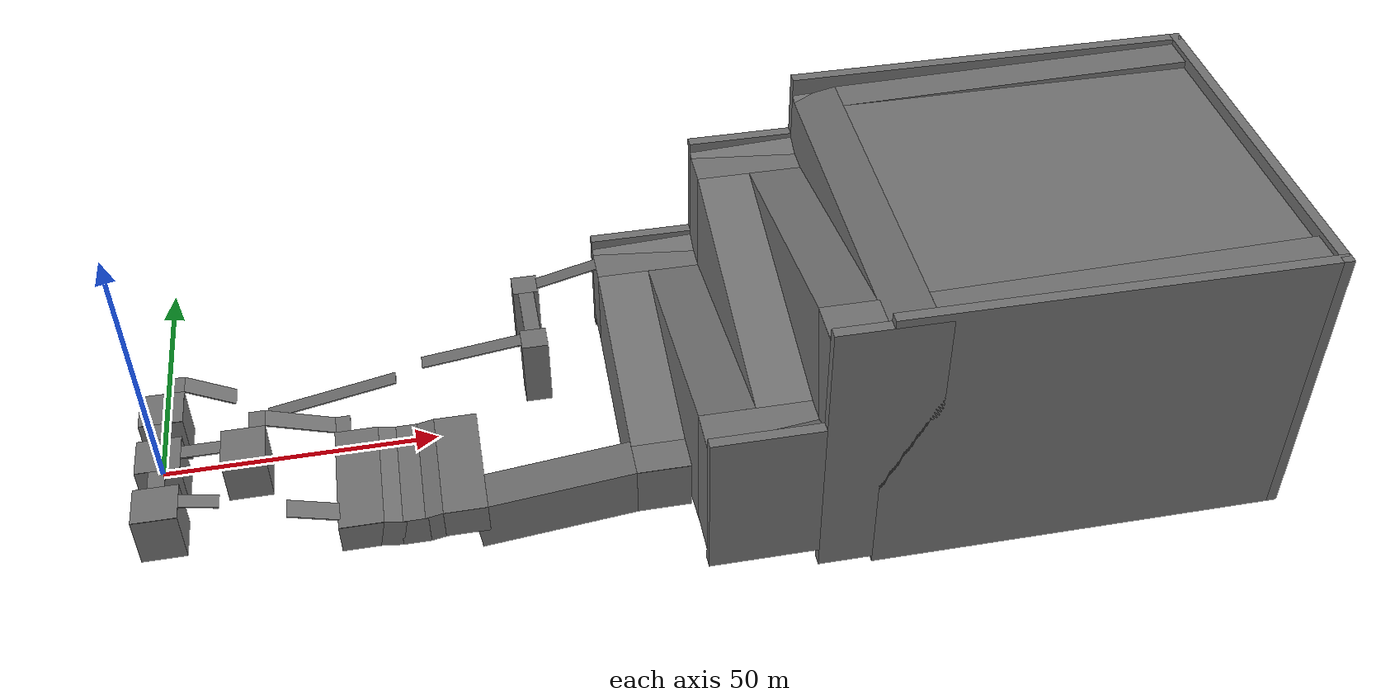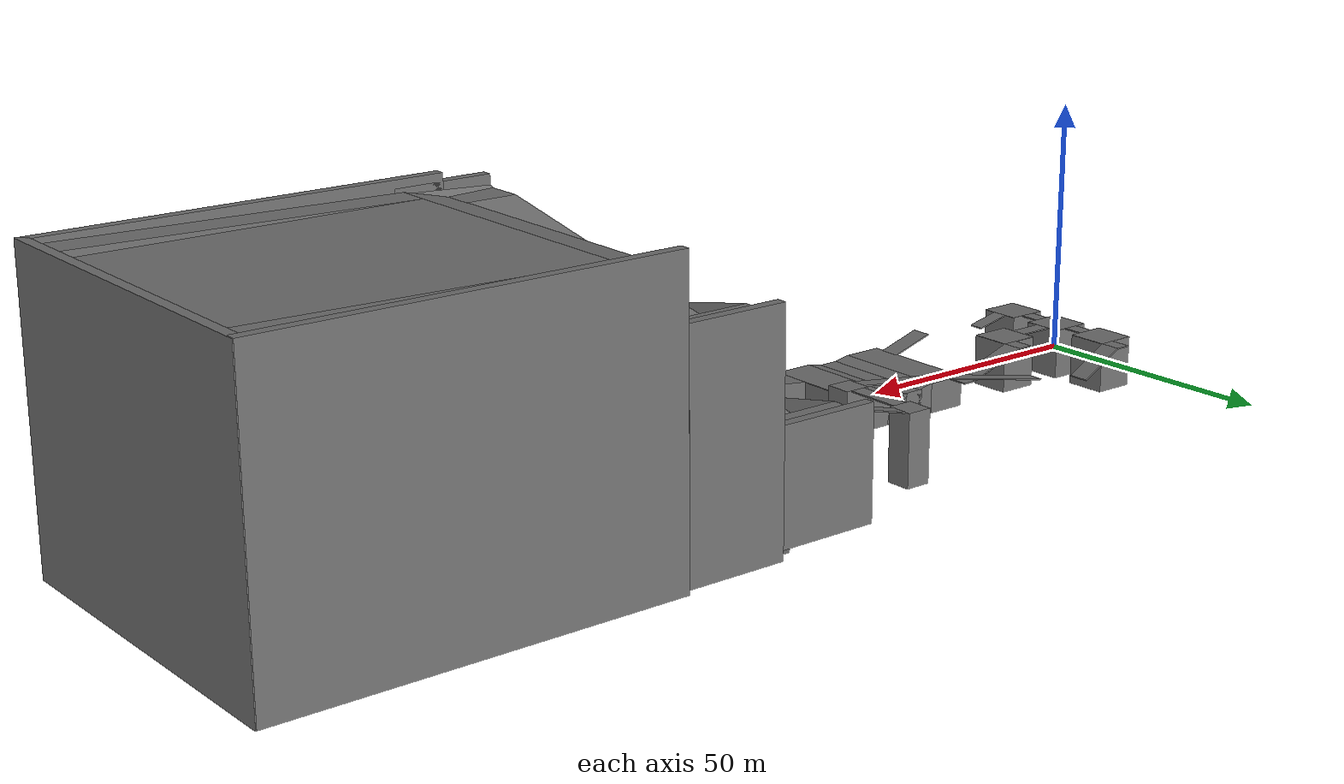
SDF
<sdf version="1.10">
 <world name="waterworld">
  <physics name="ode_cpu" type="ode">
   <max_step_size>0.002</max_step_size>
   <real_time_update_rate>500</real_time_update_rate>
   <real_time_factor>1.0</real_time_factor>
   <ode>
    <solver><type>quick</type><iters>50</iters><sor>1.3</sor></solver>
    <constraints><cfm>0.0</cfm><erp>0.2</erp></constraints>
   </ode>
  </physics>
  <plugin name="gz::sim::systems::Physics" filename="gz-sim-physics-system"/>
  <plugin name="gz::sim::systems::UserCommands" filename="gz-sim-user-commands-system"/>
  <plugin name="gz::sim::systems::SceneBroadcaster" filename="gz-sim-scene-broadcaster-system"/>
  <plugin name="gz::sim::systems::Contact" filename="gz-sim-contact-system"/>
  <gravity>0 0 -9.81</gravity>
  <magnetic_field>5.5644999999999998e-06 2.2875799999999999e-05 -4.2388400000000002e-05</magnetic_field>
  <atmosphere type="adiabatic"/>
  <scene><ambient>0.5 0.5 0.5 1</ambient><background>0.7 0.7 0.75 1</background><shadows>false</shadows></scene>
  <model name="central_tower">
   <static>true</static>
   <link name="link">
    <collision name="col"><geometry><box><size>8 8 10</size></box></geometry></collision>
    <visual name="vis">
     <geometry><box><size>8 8 10</size></box></geometry>
     <material>
      <ambient>0.35 0.35 0.35 1</ambient>
      <diffuse>0.45 0.45 0.45 1</diffuse>
      <pbr>
       <metal>
        <albedo_map>model://textures/stone_textures/stone_wall_seamless_1x1.jpg</albedo_map>
        <roughness>0.9</roughness>
        <metalness>0.0</metalness>
       </metal>
      </pbr>
     </material>
    </visual>
   </link>
  </model>
  <model name="central_arena_floor_model">
   <static>true</static>
   <pose>0 0 5 0 0 0</pose>
   <link name="central_arena_floor_link">
    <collision name="col">
     <geometry><box><size>8 8 0.1</size></box></geometry>
     <surface>
      <friction><ode><mu>0.9</mu><mu2>0.9</mu2><fdir1>1 0 0</fdir1></ode></friction>
      <bounce><restitution_coefficient>0.03</restitution_coefficient><threshold>1e3</threshold></bounce>
      <contact><ode><kp>1e6</kp><kd>1e3</kd><max_vel>1.0</max_vel><min_depth>0.001</min_depth></ode></contact>
     </surface>
    </collision>
    <visual name="vis">
     <geometry><box><size>8 8 0.1</size></box></geometry>
     <material>
      <ambient>0.35 0.35 0.35 1</ambient>
      <diffuse>0.45 0.45 0.45 1</diffuse>
      <pbr>
       <metal>
        <albedo_map>model://textures/grass_textures/green_grass_seamless.jpg</albedo_map>
        <roughness>0.9</roughness>
        <metalness>0.0</metalness>
       </metal>
      </pbr>
     </material>
    </visual>
   </link>
  </model>
  <model name="west_tower">
   <static>true</static>
   <link name="link">
    <pose>0 12 0 0 0 0</pose>
    <collision name="col"><geometry><box><size>8 8 10</size></box></geometry></collision>
    <visual name="vis">
     <geometry><box><size>8 8 10</size></box></geometry>
     <material>
      <ambient>0.35 0.35 0.35 1</ambient>
      <diffuse>0.45 0.45 0.45 1</diffuse>
      <pbr>
       <metal>
        <albedo_map>model://textures/stone_textures/stone_wall_seamless_1x1.jpg</albedo_map>
        <roughness>0.9</roughness>
        <metalness>0.0</metalness>
       </metal>
      </pbr>
     </material>
    </visual>
   </link>
  </model>
  <model name="west_arena_floor_model">
   <static>true</static>
   <pose>0 12 5 0 0 0</pose>
   <link name="west_arena_floor_link">
    <collision name="col">
     <geometry><box><size>8 8 0.1</size></box></geometry>
     <surface>
      <friction><ode><mu>0.9</mu><mu2>0.9</mu2><fdir1>1 0 0</fdir1></ode></friction>
      <bounce><restitution_coefficient>0.03</restitution_coefficient><threshold>1e3</threshold></bounce>
      <contact><ode><kp>1e6</kp><kd>1e3</kd><max_vel>1.0</max_vel><min_depth>0.001</min_depth></ode></contact>
     </surface>
    </collision>
    <visual name="vis">
     <geometry><box><size>8 8 0.1</size></box></geometry>
     <material>
      <ambient>0.35 0.35 0.35 1</ambient>
      <diffuse>0.45 0.45 0.45 1</diffuse>
      <pbr>
       <metal>
        <albedo_map>model://textures/grass_textures/green_grass_seamless.jpg</albedo_map>
        <roughness>0.9</roughness>
        <metalness>0.0</metalness>
       </metal>
      </pbr>
     </material>
    </visual>
   </link>
  </model>
  <model name="east_tower">
   <static>true</static>
   <link name="link">
    <pose>0 -12 0 0 0 0</pose>
    <collision name="col"><geometry><box><size>8 8 10</size></box></geometry></collision>
    <visual name="vis">
     <geometry><box><size>8 8 10</size></box></geometry>
     <material>
      <ambient>0.35 0.35 0.35 1</ambient>
      <diffuse>0.45 0.45 0.45 1</diffuse>
      <pbr>
       <metal>
        <albedo_map>model://textures/stone_textures/stone_wall_seamless_1x1.jpg</albedo_map>
        <roughness>0.9</roughness>
        <metalness>0.0</metalness>
       </metal>
      </pbr>
     </material>
    </visual>
   </link>
  </model>
  <model name="east_arena_floor_model">
   <static>true</static>
   <pose>0 -12 5 0 0 0</pose>
   <link name="east_arena_floor_link">
    <collision name="col">
     <geometry><box><size>8 8 0.1</size></box></geometry>
     <surface>
      <friction><ode><mu>0.9</mu><mu2>0.9</mu2><fdir1>1 0 0</fdir1></ode></friction>
      <bounce><restitution_coefficient>0.03</restitution_coefficient><threshold>1e3</threshold></bounce>
      <contact><ode><kp>1e6</kp><kd>1e3</kd><max_vel>1.0</max_vel><min_depth>0.001</min_depth></ode></contact>
     </surface>
    </collision>
    <visual name="vis">
     <geometry><box><size>8 8 0.1</size></box></geometry>
     <material>
      <ambient>0.35 0.35 0.35 1</ambient>
      <diffuse>0.45 0.45 0.45 1</diffuse>
      <pbr>
       <metal>
        <albedo_map>model://textures/grass_textures/green_grass_seamless.jpg</albedo_map>
        <roughness>0.9</roughness>
        <metalness>0.0</metalness>
       </metal>
      </pbr>
     </material>
    </visual>
   </link>
  </model>
  <model name="north_tower">
   <static>true</static>
   <link name="link">
    <pose>15 0 0 0 0 0</pose>
    <collision name="col"><geometry><box><size>8 8 10</size></box></geometry></collision>
    <visual name="vis">
     <geometry><box><size>8 8 10</size></box></geometry>
     <material>
      <ambient>0.35 0.35 0.35 1</ambient>
      <diffuse>0.45 0.45 0.45 1</diffuse>
      <pbr>
       <metal>
        <albedo_map>model://textures/stone_textures/stone_wall_seamless_1x1.jpg</albedo_map>
        <roughness>0.9</roughness>
        <metalness>0.0</metalness>
       </metal>
      </pbr>
     </material>
    </visual>
   </link>
  </model>
  <model name="north_arena_floor_model">
   <static>true</static>
   <pose>15 0 5 0 0 0</pose>
   <link name="north_arena_floor_link">
    <collision name="col">
     <geometry><box><size>8 8 0.1</size></box></geometry>
     <surface>
      <friction><ode><mu>0.9</mu><mu2>0.9</mu2><fdir1>1 0 0</fdir1></ode></friction>
      <bounce><restitution_coefficient>0.03</restitution_coefficient><threshold>1e3</threshold></bounce>
      <contact><ode><kp>1e6</kp><kd>1e3</kd><max_vel>1.0</max_vel><min_depth>0.001</min_depth></ode></contact>
     </surface>
    </collision>
    <visual name="vis">
     <geometry><box><size>8 8 0.1</size></box></geometry>
     <material>
      <ambient>0.35 0.35 0.35 1</ambient>
      <diffuse>0.45 0.45 0.45 1</diffuse>
      <pbr>
       <metal>
        <albedo_map>model://textures/grass_textures/green_grass_seamless.jpg</albedo_map>
        <roughness>0.9</roughness>
        <metalness>0.0</metalness>
       </metal>
      </pbr>
     </material>
    </visual>
   </link>
  </model>
  <model name="tidal_island_segment_1">
   <static>true</static>
   <link name="link">
    <pose>35 -8 -2.2 0 0 0</pose>
    <collision name="col"><geometry><box><size>8 24 6</size></box></geometry></collision>
    <visual name="vis">
     <geometry><box><size>8 24 6</size></box></geometry>
     <material>
      <ambient>0.35 0.35 0.35 1</ambient>
      <diffuse>0.45 0.45 0.45 1</diffuse>
      <pbr>
       <metal>
        <albedo_map>model://textures/stone_textures/stone_wall_seamless_1x1.jpg</albedo_map>
        <roughness>0.9</roughness>
        <metalness>0.0</metalness>
       </metal>
      </pbr>
     </material>
    </visual>
   </link>
  </model>
  <model name="tidal_island_segment_1_floor_model">
   <static>true</static>
   <pose>35 -8 0.8 0 0 0</pose>
   <link name="north_arena_floor_link">
    <collision name="col">
     <geometry><box><size>8 24 0.1</size></box></geometry>
     <surface>
      <friction><ode><mu>0.9</mu><mu2>0.9</mu2><fdir1>1 0 0</fdir1></ode></friction>
      <bounce><restitution_coefficient>0.03</restitution_coefficient><threshold>1e3</threshold></bounce>
      <contact><ode><kp>1e6</kp><kd>1e3</kd><max_vel>1.0</max_vel><min_depth>0.001</min_depth></ode></contact>
     </surface>
    </collision>
    <visual name="vis">
     <geometry><box><size>8 24 0.1</size></box></geometry>
     <material>
      <ambient>0.35 0.35 0.35 1</ambient>
      <diffuse>0.45 0.45 0.45 1</diffuse>
      <pbr>
       <metal>
        <albedo_map>model://textures/grass_textures/green_grass_seamless.jpg</albedo_map>
        <roughness>0.9</roughness>
        <metalness>0.0</metalness>
       </metal>
      </pbr>
     </material>
    </visual>
   </link>
  </model>
  <model name="tidal_island_segment_2">
   <static>true</static>
   <link name="link">
    <pose>40.3641 -8 -2.4876 0 0.2 0</pose>
    <collision name="col"><geometry><box><size>4 24 6</size></box></geometry></collision>
    <visual name="vis">
     <geometry><box><size>4 24 6</size></box></geometry>
     <material>
      <ambient>0.35 0.35 0.35 1</ambient>
      <diffuse>0.45 0.45 0.45 1</diffuse>
      <pbr>
       <metal>
        <albedo_map>model://textures/stone_textures/stone_wall_seamless_1x1.jpg</albedo_map>
        <roughness>0.9</roughness>
        <metalness>0.0</metalness>
       </metal>
      </pbr>
     </material>
    </visual>
   </link>
  </model>
  <model name="tidal_island_segment_3">
   <static>true</static>
   <link name="link">
    <pose>44.2 -8 -2.8 0 0 0</pose>
    <collision name="col"><geometry><box><size>5 24 6</size></box></geometry></collision>
    <visual name="vis">
     <geometry><box><size>5 24 6</size></box></geometry>
     <material>
      <ambient>0.35 0.35 0.35 1</ambient>
      <diffuse>0.45 0.45 0.45 1</diffuse>
      <pbr>
       <metal>
        <albedo_map>model://textures/stone_textures/stone_wall_seamless_1x1.jpg</albedo_map>
        <roughness>0.9</roughness>
        <metalness>0.0</metalness>
       </metal>
      </pbr>
     </material>
    </visual>
   </link>
  </model>
  <model name="tidal_island_segment_4">
   <static>true</static>
   <link name="link">
    <pose>48 -8 -2.4876 0 -0.2 0</pose>
    <collision name="col"><geometry><box><size>4 24 6</size></box></geometry></collision>
    <visual name="vis">
     <geometry><box><size>4 24 6</size></box></geometry>
     <material>
      <ambient>0.35 0.35 0.35 1</ambient>
      <diffuse>0.45 0.45 0.45 1</diffuse>
      <pbr>
       <metal>
        <albedo_map>model://textures/stone_textures/stone_wall_seamless_1x1.jpg</albedo_map>
        <roughness>0.9</roughness>
        <metalness>0.0</metalness>
       </metal>
      </pbr>
     </material>
    </visual>
   </link>
  </model>
  <model name="tidal_island_segment_5">
   <static>true</static>
   <link name="link">
    <pose>53.3641 -8 -2.2 0 0 0</pose>
    <collision name="col"><geometry><box><size>8 24 6</size></box></geometry></collision>
    <visual name="vis">
     <geometry><box><size>8 24 6</size></box></geometry>
     <material>
      <ambient>0.35 0.35 0.35 1</ambient>
      <diffuse>0.45 0.45 0.45 1</diffuse>
      <pbr>
       <metal>
        <albedo_map>model://textures/stone_textures/stone_wall_seamless_1x1.jpg</albedo_map>
        <roughness>0.9</roughness>
        <metalness>0.0</metalness>
       </metal>
      </pbr>
     </material>
    </visual>
   </link>
  </model>
  <model name="tidal_island_segment_5_floor_model">
   <static>true</static>
   <pose>53.3641 -8 0.7999 0 0 0</pose>
   <link name="north_arena_floor_link">
    <collision name="col">
     <geometry><box><size>8 24 0.1</size></box></geometry>
     <surface>
      <friction><ode><mu>0.9</mu><mu2>0.9</mu2><fdir1>1 0 0</fdir1></ode></friction>
      <bounce><restitution_coefficient>0.03</restitution_coefficient><threshold>1e3</threshold></bounce>
      <contact><ode><kp>1e6</kp><kd>1e3</kd><max_vel>1.0</max_vel><min_depth>0.001</min_depth></ode></contact>
     </surface>
    </collision>
    <visual name="vis">
     <geometry><box><size>8 24 0.1</size></box></geometry>
     <material>
      <ambient>0.35 0.35 0.35 1</ambient>
      <diffuse>0.45 0.45 0.45 1</diffuse>
      <pbr>
       <metal>
        <albedo_map>model://textures/grass_textures/green_grass_seamless.jpg</albedo_map>
        <roughness>0.9</roughness>
        <metalness>0.0</metalness>
       </metal>
      </pbr>
     </material>
    </visual>
   </link>
  </model>
  <model name="north_bridge">
   <static>true</static>
   <link name="link">
    <pose>7.5 0 4.925 0 0 0</pose>
    <collision name="col"><geometry><box><size>7 3 0.25</size></box></geometry></collision>
    <visual name="vis">
     <geometry><box><size>7 3 0.25</size></box></geometry>
     <material>
      <ambient>0.35 0.35 0.35 1</ambient>
      <diffuse>0.45 0.45 0.45 1</diffuse>
      <pbr>
       <metal>
        <albedo_map>model://textures/wood_textures/wood_texture_seamless_1x2.jpg</albedo_map>
        <roughness>0.9</roughness>
        <metalness>0.0</metalness>
       </metal>
      </pbr>
     </material>
    </visual>
   </link>
  </model>
  <model name="east_bridge">
   <static>true</static>
   <link name="link">
    <pose>0 -6 4.925 0 0 0</pose>
    <collision name="col"><geometry><box><size>3 4 0.25</size></box></geometry></collision>
    <visual name="vis">
     <geometry><box><size>3 4 0.25</size></box></geometry>
     <material>
      <ambient>0.35 0.35 0.35 1</ambient>
      <diffuse>0.45 0.45 0.45 1</diffuse>
      <pbr>
       <metal>
        <albedo_map>model://textures/wood_textures/wood_texture_seamless_1x1.jpg</albedo_map>
        <roughness>0.9</roughness>
        <metalness>0.0</metalness>
       </metal>
      </pbr>
     </material>
    </visual>
   </link>
  </model>
  <model name="west_bridge">
   <static>true</static>
   <link name="link">
    <pose>0 6 4.925 0 0 0</pose>
    <collision name="col"><geometry><box><size>3 4 0.25</size></box></geometry></collision>
    <visual name="vis">
     <geometry><box><size>3 4 0.25</size></box></geometry>
     <material>
      <ambient>0.35 0.35 0.35 1</ambient>
      <diffuse>0.45 0.45 0.45 1</diffuse>
      <pbr>
       <metal>
        <albedo_map>model://textures/wood_textures/wood_texture_seamless_1x1.jpg</albedo_map>
        <roughness>0.9</roughness>
        <metalness>0.0</metalness>
       </metal>
      </pbr>
     </material>
    </visual>
   </link>
  </model>
  <model name="east_north_bridge">
   <static>true</static>
   <link name="link">
    <pose>7.39 -12 4.165 0 0.22 0</pose>
    <collision name="col"><geometry><box><size>7 3 0.25</size></box></geometry></collision>
    <visual name="vis">
     <geometry><box><size>7 3 0.25</size></box></geometry>
     <material>
      <ambient>0.35 0.35 0.35 1</ambient>
      <diffuse>0.45 0.45 0.45 1</diffuse>
      <pbr>
       <metal>
        <albedo_map>model://textures/wood_textures/wood_texture_seamless_1x2.jpg</albedo_map>
        <roughness>0.9</roughness>
        <metalness>0.0</metalness>
       </metal>
      </pbr>
     </material>
    </visual>
   </link>
  </model>
  <model name="west_north_bridge_platform">
   <static>true</static>
   <link name="link">
    <pose>2.5 18 4.925 0 0 0</pose>
    <collision name="col"><geometry><box><size>3 4 0.25</size></box></geometry></collision>
    <visual name="vis">
     <geometry><box><size>3 4 0.25</size></box></geometry>
     <material>
      <ambient>0.35 0.35 0.35 1</ambient>
      <diffuse>0.45 0.45 0.45 1</diffuse>
      <pbr>
       <metal>
        <albedo_map>model://textures/wood_textures/wood_texture_seamless_1x1.jpg</albedo_map>
        <roughness>0.9</roughness>
        <metalness>0.0</metalness>
       </metal>
      </pbr>
     </material>
    </visual>
   </link>
  </model>
  <model name="west_north_bridge">
   <static>true</static>
   <link name="link">
    <pose>8.328 18 2.543 0 0.5 0</pose>
    <collision name="col"><geometry><box><size>10 4 0.25</size></box></geometry></collision>
    <visual name="vis">
     <geometry><box><size>10 4 0.25</size></box></geometry>
     <material>
      <ambient>0.35 0.35 0.35 1</ambient>
      <diffuse>0.45 0.45 0.45 1</diffuse>
      <pbr>
       <metal>
        <albedo_map>model://textures/wood_textures/wood_texture_seamless_1x3.jpg</albedo_map>
        <roughness>0.9</roughness>
        <metalness>0.0</metalness>
       </metal>
      </pbr>
     </material>
    </visual>
   </link>
  </model>
  <model name="west_north_north_bridge">
   <static>true</static>
   <link name="link">
    <pose>31 12.2 2.5 0 -0.2 0</pose>
    <collision name="col"><geometry><box><size>25 3 0.25</size></box></geometry></collision>
    <visual name="vis">
     <geometry><box><size>25 3 0.25</size></box></geometry>
     <material>
      <ambient>0.35 0.35 0.35 1</ambient>
      <diffuse>0.45 0.45 0.45 1</diffuse>
      <pbr>
       <metal>
        <albedo_map>model://textures/wood_textures/wood_texture_seamless_1x10.jpg</albedo_map>
        <roughness>0.9</roughness>
        <metalness>0.0</metalness>
       </metal>
      </pbr>
     </material>
    </visual>
   </link>
  </model>
  <model name="north_north_bridge_platform_1">
   <static>true</static>
   <link name="link">
    <pose>17.5 6 4.925 0 0 0</pose>
    <collision name="col"><geometry><box><size>3 4 0.25</size></box></geometry></collision>
    <visual name="vis">
     <geometry><box><size>3 4 0.25</size></box></geometry>
     <material>
      <ambient>0.35 0.35 0.35 1</ambient>
      <diffuse>0.45 0.45 0.45 1</diffuse>
      <pbr>
       <metal>
        <albedo_map>model://textures/wood_textures/wood_texture_seamless_1x3.jpg</albedo_map>
        <roughness>0.9</roughness>
        <metalness>0.0</metalness>
       </metal>
      </pbr>
     </material>
    </visual>
   </link>
  </model>
  <model name="north_north_bridge">
   <static>true</static>
   <link name="link">
    <pose>25.1 6 2.82 0 0.33 0</pose>
    <collision name="col"><geometry><box><size>13 4 0.25</size></box></geometry></collision>
    <visual name="vis">
     <geometry><box><size>13 4 0.25</size></box></geometry>
     <material>
      <ambient>0.35 0.35 0.35 1</ambient>
      <diffuse>0.45 0.45 0.45 1</diffuse>
      <pbr>
       <metal>
        <albedo_map>model://textures/wood_textures/wood_texture_seamless_1x3.jpg</albedo_map>
        <roughness>0.9</roughness>
        <metalness>0.0</metalness>
       </metal>
      </pbr>
     </material>
    </visual>
   </link>
  </model>
  <model name="north_north_bridge_platform_2">
   <static>true</static>
   <link name="link">
    <pose>32.5 6 0.725 0 0 0</pose>
    <collision name="col"><geometry><box><size>3 4 0.25</size></box></geometry></collision>
    <visual name="vis">
     <geometry><box><size>3 4 0.25</size></box></geometry>
     <material>
      <ambient>0.35 0.35 0.35 1</ambient>
      <diffuse>0.45 0.45 0.45 1</diffuse>
      <pbr>
       <metal>
        <albedo_map>model://textures/wood_textures/wood_texture_seamless_1x1.jpg</albedo_map>
        <roughness>0.9</roughness>
        <metalness>0.0</metalness>
       </metal>
      </pbr>
     </material>
    </visual>
   </link>
  </model>
  <model name="east_north_north_bridge">
   <static>true</static>
   <link name="link">
    <pose>27.26 -16 1.986 0 0.3 0</pose>
    <collision name="col"><geometry><box><size>10 4 0.25</size></box></geometry></collision>
    <visual name="vis">
     <geometry><box><size>10 4 0.25</size></box></geometry>
     <material>
      <ambient>0.35 0.35 0.35 1</ambient>
      <diffuse>0.45 0.45 0.45 1</diffuse>
      <pbr>
       <metal>
        <albedo_map>model://textures/wood_textures/wood_texture_seamless_1x5.jpg</albedo_map>
        <roughness>0.9</roughness>
        <metalness>0.0</metalness>
       </metal>
      </pbr>
     </material>
    </visual>
   </link>
  </model>
  <model name="stone_bridge_1">
   <static>true</static>
   <link name="link">
    <pose>70 -15.999 -2.66 0 -0.12 0</pose>
    <collision name="col"><geometry><box><size>30 8 10</size></box></geometry></collision>
    <visual name="vis">
     <geometry><box><size>30 8 10</size></box></geometry>
     <material>
      <ambient>0.35 0.35 0.35 1</ambient>
      <diffuse>0.45 0.45 0.45 1</diffuse>
      <pbr>
       <metal>
        <albedo_map>model://textures/stone_textures/stone_wall_seamless_1x1.jpg</albedo_map>
        <roughness>0.9</roughness>
        <metalness>0.0</metalness>
       </metal>
      </pbr>
     </material>
    </visual>
   </link>
  </model>
  <model name="east_north_north_north_bridge_1">
   <static>true</static>
   <link name="link">
    <pose>57.978 14 7.6 0 -0.133 0</pose>
    <collision name="col"><geometry><box><size>19.25 3 0.25</size></box></geometry></collision>
    <visual name="vis">
     <geometry><box><size>19.25 3 0.25</size></box></geometry>
     <material>
      <ambient>0.35 0.35 0.35 1</ambient>
      <diffuse>0.45 0.45 0.45 1</diffuse>
      <pbr>
       <metal>
        <albedo_map>model://textures/wood_textures/wood_texture_seamless_1x5.jpg</albedo_map>
        <roughness>0.9</roughness>
        <metalness>0.0</metalness>
       </metal>
      </pbr>
     </material>
    </visual>
   </link>
  </model>
  <model name="east_north_north_north_bridge_platform_1">
   <static>true</static>
   <link name="link">
    <pose>70 14 2 0 0 0</pose>
    <collision name="col"><geometry><box><size>5 5 14</size></box></geometry></collision>
    <visual name="vis">
     <geometry><box><size>5 5 14</size></box></geometry>
     <material>
      <ambient>0.35 0.35 0.35 1</ambient>
      <diffuse>0.45 0.45 0.45 1</diffuse>
      <pbr>
       <metal>
        <albedo_map>model://textures/stone_textures/stone_wall_seamless_1x1.jpg</albedo_map>
        <roughness>0.9</roughness>
        <metalness>0.0</metalness>
       </metal>
      </pbr>
     </material>
    </visual>
   </link>
  </model>
  <model name="east_north_north_north_bridge_2">
   <static>true</static>
   <link name="link">
    <pose>70 22 8.875 0 0 0</pose>
    <collision name="col"><geometry><box><size>3 11 0.25</size></box></geometry></collision>
    <visual name="vis">
     <geometry><box><size>3 11 0.25</size></box></geometry>
     <material>
      <ambient>0.35 0.35 0.35 1</ambient>
      <diffuse>0.45 0.45 0.45 1</diffuse>
      <pbr>
       <metal>
        <albedo_map>model://textures/wood_textures/wood_texture_seamless_1x1.jpg</albedo_map>
        <roughness>0.9</roughness>
        <metalness>0.0</metalness>
       </metal>
      </pbr>
     </material>
    </visual>
   </link>
  </model>
  <model name="east_north_north_north_bridge_platform_2">
   <static>true</static>
   <link name="link">
    <pose>70 30 2 0 0 0</pose>
    <collision name="col"><geometry><box><size>5 5 14</size></box></geometry></collision>
    <visual name="vis">
     <geometry><box><size>5 5 14</size></box></geometry>
     <material>
      <ambient>0.35 0.35 0.35 1</ambient>
      <diffuse>0.45 0.45 0.45 1</diffuse>
      <pbr>
       <metal>
        <albedo_map>model://textures/stone_textures/stone_wall_seamless_1x1.jpg</albedo_map>
        <roughness>0.9</roughness>
        <metalness>0.0</metalness>
       </metal>
      </pbr>
     </material>
    </visual>
   </link>
  </model>
  <model name="east_north_north_north_bridge_3">
   <static>true</static>
   <link name="link">
    <pose>78.265 30 10.385 0 -0.25 0</pose>
    <collision name="col"><geometry><box><size>12.5 3 0.25</size></box></geometry></collision>
    <visual name="vis">
     <geometry><box><size>12.5 3 0.25</size></box></geometry>
     <material>
      <ambient>0.35 0.35 0.35 1</ambient>
      <diffuse>0.45 0.45 0.45 1</diffuse>
      <pbr>
       <metal>
        <albedo_map>model://textures/wood_textures/wood_texture_seamless_1x5.jpg</albedo_map>
        <roughness>0.9</roughness>
        <metalness>0.0</metalness>
       </metal>
      </pbr>
     </material>
    </visual>
   </link>
  </model>
  <model name="ramp_tower_left_landing_1">
   <static>true</static>
   <link name="link">
    <pose>94.29 30 3.5 0 0 0</pose>
    <collision name="col"><geometry><box><size>20 8 17</size></box></geometry></collision>
    <visual name="vis">
     <geometry><box><size>20 8 17</size></box></geometry>
     <material>
      <ambient>0.35 0.35 0.35 1</ambient>
      <diffuse>0.45 0.45 0.45 1</diffuse>
      <pbr>
       <metal>
        <albedo_map>model://textures/stone_textures/stone_wall_seamless_1x1.jpg</albedo_map>
        <roughness>0.9</roughness>
        <metalness>0.0</metalness>
       </metal>
      </pbr>
     </material>
    </visual>
   </link>
  </model>
  <model name="ramp_tower_left_landing_1_floor">
   <static>true</static>
   <pose>94.29 30 12 0 0 0</pose>
   <link name="west_arena_floor_link">
    <collision name="col">
     <geometry><box><size>20 8 0.1</size></box></geometry>
     <surface>
      <friction><ode><mu>0.9</mu><mu2>0.9</mu2><fdir1>1 0 0</fdir1></ode></friction>
      <bounce><restitution_coefficient>0.03</restitution_coefficient><threshold>1e3</threshold></bounce>
      <contact><ode><kp>1e6</kp><kd>1e3</kd><max_vel>1.0</max_vel><min_depth>0.001</min_depth></ode></contact>
     </surface>
    </collision>
    <visual name="vis">
     <geometry><box><size>20 8 0.1</size></box></geometry>
     <material>
      <ambient>0.35 0.35 0.35 1</ambient>
      <diffuse>0.45 0.45 0.45 1</diffuse>
      <pbr>
       <metal>
        <albedo_map>model://textures/grass_textures/green_grass_seamless.jpg</albedo_map>
        <roughness>0.9</roughness>
        <metalness>0.0</metalness>
       </metal>
      </pbr>
     </material>
    </visual>
   </link>
  </model>
  <model name="ramp_tower_left_landing_1_wall">
   <static>true</static>
   <link name="link">
    <pose>94.29 35 3.5 0 0 0</pose>
    <collision name="col"><geometry><box><size>20 2 22</size></box></geometry></collision>
    <visual name="vis">
     <geometry><box><size>20 2 22</size></box></geometry>
     <material>
      <ambient>0.35 0.35 0.35 1</ambient>
      <diffuse>0.45 0.45 0.45 1</diffuse>
      <pbr>
       <metal>
        <albedo_map>model://textures/stone_textures/stone_wall_seamless_1x1.jpg</albedo_map>
        <roughness>0.9</roughness>
        <metalness>0.0</metalness>
       </metal>
      </pbr>
     </material>
    </visual>
   </link>
  </model>
  <model name="ramp_tower_left_landing_1_ramp">
   <static>true</static>
   <link name="link">
    <pose>94.6 33 11 0.40 -0.05 0</pose>
    <collision name="col"><geometry><box><size>20.4 5 3</size></box></geometry></collision>
    <visual name="vis">
     <geometry><box><size>20.4 5 3</size></box></geometry>
     <material>
      <ambient>0.35 0.35 0.35 1</ambient>
      <diffuse>0.45 0.45 0.45 1</diffuse>
      <pbr>
       <metal>
        <albedo_map>model://textures/stone_textures/stone_wall_seamless_1x1.jpg</albedo_map>
        <roughness>0.9</roughness>
        <metalness>0.0</metalness>
       </metal>
      </pbr>
     </material>
    </visual>
   </link>
  </model>
  <model name="ramp_tower_right_landing_1">
   <static>true</static>
   <link name="link">
    <pose>89.29 -15.999 -0.95 0 0 0</pose>
    <collision name="col"><geometry><box><size>10 8 10</size></box></geometry></collision>
    <visual name="vis">
     <geometry><box><size>10 8 10</size></box></geometry>
     <material>
      <ambient>0.35 0.35 0.35 1</ambient>
      <diffuse>0.45 0.45 0.45 1</diffuse>
      <pbr>
       <metal>
        <albedo_map>model://textures/stone_textures/stone_wall_seamless_1x1.jpg</albedo_map>
        <roughness>0.9</roughness>
        <metalness>0.0</metalness>
       </metal>
      </pbr>
     </material>
    </visual>
   </link>
  </model>
  <model name="ramp_tower_right_landing_1_floor">
   <static>true</static>
   <pose>89.29 -15.999 4.05 0 0 0</pose>
   <link name="west_arena_floor_link">
    <collision name="col">
     <geometry><box><size>10 8 0.1</size></box></geometry>
     <surface>
      <friction><ode><mu>0.9</mu><mu2>0.9</mu2><fdir1>1 0 0</fdir1></ode></friction>
      <bounce><restitution_coefficient>0.03</restitution_coefficient><threshold>1e3</threshold></bounce>
      <contact><ode><kp>1e6</kp><kd>1e3</kd><max_vel>1.0</max_vel><min_depth>0.001</min_depth></ode></contact>
     </surface>
    </collision>
    <visual name="vis">
     <geometry><box><size>10 8 0.1</size></box></geometry>
     <material>
      <ambient>0.35 0.35 0.35 1</ambient>
      <diffuse>0.45 0.45 0.45 1</diffuse>
      <pbr>
       <metal>
        <albedo_map>model://textures/grass_textures/green_grass_seamless.jpg</albedo_map>
        <roughness>0.9</roughness>
        <metalness>0.0</metalness>
       </metal>
      </pbr>
     </material>
    </visual>
   </link>
  </model>
  <model name="ramp_tower_ramp_1">
   <static>true</static>
   <link name="link">
    <pose>89.29 8.087 -0.253 0.2 0 0</pose>
    <collision name="col"><geometry><box><size>10 40 17</size></box></geometry></collision>
    <visual name="vis">
     <geometry><box><size>10 40 17</size></box></geometry>
     <material>
      <ambient>0.35 0.35 0.35 1</ambient>
      <diffuse>0.45 0.45 0.45 1</diffuse>
      <pbr>
       <metal>
        <albedo_map>model://textures/stone_textures/stone_wall_seamless_1x1.jpg</albedo_map>
        <roughness>0.9</roughness>
        <metalness>0.0</metalness>
       </metal>
      </pbr>
     </material>
    </visual>
   </link>
  </model>
  <model name="ramp_tower_ramp_2">
   <static>true</static>
   <link name="link">
    <pose>99.29 0 4.55 -0.2 0 0</pose>
    <collision name="col"><geometry><box><size>10 58.15 25</size></box></geometry></collision>
    <visual name="vis">
     <geometry><box><size>10 58.15 25</size></box></geometry>
     <material>
      <ambient>0.35 0.35 0.35 1</ambient>
      <diffuse>0.45 0.45 0.45 1</diffuse>
      <pbr>
       <metal>
        <albedo_map>model://textures/stone_textures/stone_wall_seamless_1x1.jpg</albedo_map>
        <roughness>0.9</roughness>
        <metalness>0.0</metalness>
       </metal>
      </pbr>
     </material>
    </visual>
   </link>
  </model>
  <model name="ramp_tower_left_landing_2">
   <static>true</static>
   <link name="link">
    <pose>104.29 -30 10 0 0 0</pose>
    <collision name="col"><geometry><box><size>20 8 25</size></box></geometry></collision>
    <visual name="vis">
     <geometry><box><size>20 8 25</size></box></geometry>
     <material>
      <ambient>0.35 0.35 0.35 1</ambient>
      <diffuse>0.45 0.45 0.45 1</diffuse>
      <pbr>
       <metal>
        <albedo_map>model://textures/stone_textures/stone_wall_seamless_1x1.jpg</albedo_map>
        <roughness>0.9</roughness>
        <metalness>0.0</metalness>
       </metal>
      </pbr>
     </material>
    </visual>
   </link>
  </model>
  <model name="ramp_tower_left_landing_2_floor">
   <static>true</static>
   <pose>104.29 -30 22.524 0 0 0</pose>
   <link name="west_arena_floor_link">
    <collision name="col">
     <geometry><box><size>20 8 0.1</size></box></geometry>
     <surface>
      <friction><ode><mu>0.9</mu><mu2>0.9</mu2><fdir1>1 0 0</fdir1></ode></friction>
      <bounce><restitution_coefficient>0.03</restitution_coefficient><threshold>1e3</threshold></bounce>
      <contact><ode><kp>1e6</kp><kd>1e3</kd><max_vel>1.0</max_vel><min_depth>0.001</min_depth></ode></contact>
     </surface>
    </collision>
    <visual name="vis">
     <geometry><box><size>20 8 0.1</size></box></geometry>
     <material>
      <ambient>0.35 0.35 0.35 1</ambient>
      <diffuse>0.45 0.45 0.45 1</diffuse>
      <pbr>
       <metal>
        <albedo_map>model://textures/grass_textures/green_grass_seamless.jpg</albedo_map>
        <roughness>0.9</roughness>
        <metalness>0.0</metalness>
       </metal>
      </pbr>
     </material>
    </visual>
   </link>
  </model>
  <model name="ramp_tower_left_landing_2_wall">
   <static>true</static>
   <link name="link">
    <pose>104.29 -35 10 0 0 0</pose>
    <collision name="col"><geometry><box><size>20 2 30</size></box></geometry></collision>
    <visual name="vis">
     <geometry><box><size>20 2 30</size></box></geometry>
     <material>
      <ambient>0.35 0.35 0.35 1</ambient>
      <diffuse>0.45 0.45 0.45 1</diffuse>
      <pbr>
       <metal>
        <albedo_map>model://textures/stone_textures/stone_wall_seamless_1x1.jpg</albedo_map>
        <roughness>0.9</roughness>
        <metalness>0.0</metalness>
       </metal>
      </pbr>
     </material>
    </visual>
   </link>
  </model>
  <model name="ramp_tower_left_landing_2_ramp">
   <static>true</static>
   <link name="link">
    <pose>104.6 -32.5 21.2 -0.4 -0.05 0</pose>
    <collision name="col"><geometry><box><size>20.4 5 3</size></box></geometry></collision>
    <visual name="vis">
     <geometry><box><size>20.4 5 3</size></box></geometry>
     <material>
      <ambient>0.35 0.35 0.35 1</ambient>
      <diffuse>0.45 0.45 0.45 1</diffuse>
      <pbr>
       <metal>
        <albedo_map>model://textures/stone_textures/stone_wall_seamless_1x1.jpg</albedo_map>
        <roughness>0.9</roughness>
        <metalness>0.0</metalness>
       </metal>
      </pbr>
     </material>
    </visual>
   </link>
  </model>
  <model name="ramp_tower_ramp_3">
   <static>true</static>
   <link name="link">
    <pose>109.29 0 15.1 0.2 0 0</pose>
    <collision name="col"><geometry><box><size>10 58.15 25</size></box></geometry></collision>
    <visual name="vis">
     <geometry><box><size>10 58.15 25</size></box></geometry>
     <material>
      <ambient>0.35 0.35 0.35 1</ambient>
      <diffuse>0.45 0.45 0.45 1</diffuse>
      <pbr>
       <metal>
        <albedo_map>model://textures/stone_textures/stone_wall_seamless_1x1.jpg</albedo_map>
        <roughness>0.9</roughness>
        <metalness>0.0</metalness>
       </metal>
      </pbr>
     </material>
    </visual>
   </link>
  </model>
  <model name="ramp_tower_left_landing_3">
   <static>true</static>
   <link name="link">
    <pose>114.29 30 13.05 0 0 0</pose>
    <collision name="col"><geometry><box><size>20 8 40</size></box></geometry></collision>
    <visual name="vis">
     <geometry><box><size>20 8 40</size></box></geometry>
     <material>
      <ambient>0.35 0.35 0.35 1</ambient>
      <diffuse>0.45 0.45 0.45 1</diffuse>
      <pbr>
       <metal>
        <albedo_map>model://textures/stone_textures/stone_wall_seamless_1x1.jpg</albedo_map>
        <roughness>0.9</roughness>
        <metalness>0.0</metalness>
       </metal>
      </pbr>
     </material>
    </visual>
   </link>
  </model>
  <model name="ramp_tower_left_landing_3_floor">
   <static>true</static>
   <pose>114.29 30 33.074 0 0 0</pose>
   <link name="west_arena_floor_link">
    <collision name="col">
     <geometry><box><size>20 8 0.1</size></box></geometry>
     <surface>
      <friction><ode><mu>0.9</mu><mu2>0.9</mu2><fdir1>1 0 0</fdir1></ode></friction>
      <bounce><restitution_coefficient>0.03</restitution_coefficient><threshold>1e3</threshold></bounce>
      <contact><ode><kp>1e6</kp><kd>1e3</kd><max_vel>1.0</max_vel><min_depth>0.001</min_depth></ode></contact>
     </surface>
    </collision>
    <visual name="vis">
     <geometry><box><size>20 8 0.1</size></box></geometry>
     <material>
      <ambient>0.35 0.35 0.35 1</ambient>
      <diffuse>0.45 0.45 0.45 1</diffuse>
      <pbr>
       <metal>
        <albedo_map>model://textures/grass_textures/green_grass_seamless.jpg</albedo_map>
        <roughness>0.9</roughness>
        <metalness>0.0</metalness>
       </metal>
      </pbr>
     </material>
    </visual>
   </link>
  </model>
  <model name="ramp_tower_left_landing_3_wall">
   <static>true</static>
   <link name="link">
    <pose>114.29 35 13.05 0 0 0</pose>
    <collision name="col"><geometry><box><size>20 2 45</size></box></geometry></collision>
    <visual name="vis">
     <geometry><box><size>20 2 45</size></box></geometry>
     <material>
      <ambient>0.35 0.35 0.35 1</ambient>
      <diffuse>0.45 0.45 0.45 1</diffuse>
      <pbr>
       <metal>
        <albedo_map>model://textures/stone_textures/stone_wall_seamless_1x1.jpg</albedo_map>
        <roughness>0.9</roughness>
        <metalness>0.0</metalness>
       </metal>
      </pbr>
     </material>
    </visual>
   </link>
  </model>
  <model name="ramp_tower_left_landing_3_ramp">
   <static>true</static>
   <link name="link">
    <pose>114.6 33 32.1 0.40 -0.05 0</pose>
    <collision name="col"><geometry><box><size>20.4 5 3</size></box></geometry></collision>
    <visual name="vis">
     <geometry><box><size>20.4 5 3</size></box></geometry>
     <material>
      <ambient>0.35 0.35 0.35 1</ambient>
      <diffuse>0.45 0.45 0.45 1</diffuse>
      <pbr>
       <metal>
        <albedo_map>model://textures/stone_textures/stone_wall_seamless_1x1.jpg</albedo_map>
        <roughness>0.9</roughness>
        <metalness>0.0</metalness>
       </metal>
      </pbr>
     </material>
    </visual>
   </link>
  </model>
  <model name="ramp_tower_ramp_4">
   <static>true</static>
   <link name="link">
    <pose>119.29 0 25.65 -0.2 0 0</pose>
    <collision name="col"><geometry><box><size>10 58.15 25</size></box></geometry></collision>
    <visual name="vis">
     <geometry><box><size>10 58.15 25</size></box></geometry>
     <material>
      <ambient>0.35 0.35 0.35 1</ambient>
      <diffuse>0.45 0.45 0.45 1</diffuse>
      <pbr>
       <metal>
        <albedo_map>model://textures/stone_textures/stone_wall_seamless_1x1.jpg</albedo_map>
        <roughness>0.9</roughness>
        <metalness>0.0</metalness>
       </metal>
      </pbr>
     </material>
    </visual>
   </link>
  </model>
  <model name="ramp_tower_top_landing_4">
   <static>true</static>
   <link name="link">
    <pose>124.29 -30 18.6 0 0 0</pose>
    <collision name="col"><geometry><box><size>20 8 50</size></box></geometry></collision>
    <visual name="vis">
     <geometry><box><size>20 8 50</size></box></geometry>
     <material>
      <ambient>0.35 0.35 0.35 1</ambient>
      <diffuse>0.45 0.45 0.45 1</diffuse>
      <pbr>
       <metal>
        <albedo_map>model://textures/stone_textures/stone_wall_seamless_1x1.jpg</albedo_map>
        <roughness>0.9</roughness>
        <metalness>0.0</metalness>
       </metal>
      </pbr>
     </material>
    </visual>
   </link>
  </model>
  <model name="ramp_tower_left_landing_4_floor">
   <static>true</static>
   <pose>124.29 -30 43.6245 0 0 0</pose>
   <link name="west_arena_floor_link">
    <collision name="col">
     <geometry><box><size>20 8 0.1</size></box></geometry>
     <surface>
      <friction><ode><mu>0.9</mu><mu2>0.9</mu2><fdir1>1 0 0</fdir1></ode></friction>
      <bounce><restitution_coefficient>0.03</restitution_coefficient><threshold>1e3</threshold></bounce>
      <contact><ode><kp>1e6</kp><kd>1e3</kd><max_vel>1.0</max_vel><min_depth>0.001</min_depth></ode></contact>
     </surface>
    </collision>
    <visual name="vis">
     <geometry><box><size>20 8 0.1</size></box></geometry>
     <material>
      <ambient>0.35 0.35 0.35 1</ambient>
      <diffuse>0.45 0.45 0.45 1</diffuse>
      <pbr>
       <metal>
        <albedo_map>model://textures/grass_textures/green_grass_seamless.jpg</albedo_map>
        <roughness>0.9</roughness>
        <metalness>0.0</metalness>
       </metal>
      </pbr>
     </material>
    </visual>
   </link>
  </model>
  <model name="ramp_tower_top_landing_4_wall">
   <static>true</static>
   <link name="link">
    <pose>124.29 -35 18.6 0 0 0</pose>
    <collision name="col"><geometry><box><size>20 2 55</size></box></geometry></collision>
    <visual name="vis">
     <geometry><box><size>20 2 55</size></box></geometry>
     <material>
      <ambient>0.35 0.35 0.35 1</ambient>
      <diffuse>0.45 0.45 0.45 1</diffuse>
      <pbr>
       <metal>
        <albedo_map>model://textures/stone_textures/stone_wall_seamless_1x1.jpg</albedo_map>
        <roughness>0.9</roughness>
        <metalness>0.0</metalness>
       </metal>
      </pbr>
     </material>
    </visual>
   </link>
  </model>
  <model name="ramp_tower_left_landing_4_ramp">
   <static>true</static>
   <link name="link">
    <pose>124.6 -32.5 42.3 -0.4 -0.05 0</pose>
    <collision name="col"><geometry><box><size>20.4 5 3</size></box></geometry></collision>
    <visual name="vis">
     <geometry><box><size>20.4 5 3</size></box></geometry>
     <material>
      <ambient>0.35 0.35 0.35 1</ambient>
      <diffuse>0.45 0.45 0.45 1</diffuse>
      <pbr>
       <metal>
        <albedo_map>model://textures/stone_textures/stone_wall_seamless_1x1.jpg</albedo_map>
        <roughness>0.9</roughness>
        <metalness>0.0</metalness>
       </metal>
      </pbr>
     </material>
    </visual>
   </link>
  </model>
  <model name="ramp_tower_top_1">
   <static>true</static>
   <link name="link">
    <pose>129.29 0 18.6 0 0 0</pose>
    <collision name="col"><geometry><box><size>10 68 50</size></box></geometry></collision>
    <visual name="vis">
     <geometry><box><size>10 68 50</size></box></geometry>
     <material>
      <ambient>0.35 0.35 0.35 1</ambient>
      <diffuse>0.45 0.45 0.45 1</diffuse>
      <pbr>
       <metal>
        <albedo_map>model://textures/stone_textures/stone_wall_seamless_1x1.jpg</albedo_map>
        <roughness>0.9</roughness>
        <metalness>0.0</metalness>
       </metal>
      </pbr>
     </material>
    </visual>
   </link>
  </model>
  <model name="ramp_tower_top_ramp_1">
   <static>true</static>
   <link name="link">
    <pose>129.27 0 40.299 0 -0.2 0</pose>
    <collision name="col"><geometry><box><size>8.45 68 8.45</size></box></geometry></collision>
    <visual name="vis">
     <geometry><box><size>8.45 68 8.45</size></box></geometry>
     <material>
      <ambient>0.35 0.35 0.35 1</ambient>
      <diffuse>0.45 0.45 0.45 1</diffuse>
      <pbr>
       <metal>
        <albedo_map>model://textures/stone_textures/stone_wall_seamless_1x1.jpg</albedo_map>
        <roughness>0.9</roughness>
        <metalness>0.0</metalness>
       </metal>
      </pbr>
     </material>
    </visual>
   </link>
  </model>
  <model name="ramp_tower_top_ramp_2">
   <static>true</static>
   <link name="link">
    <pose>134.6 33 42.7 0.40 -0.05 0</pose>
    <collision name="col"><geometry><box><size>20.4 5 3</size></box></geometry></collision>
    <visual name="vis">
     <geometry><box><size>20.4 5 3</size></box></geometry>
     <material>
      <ambient>0.35 0.35 0.35 1</ambient>
      <diffuse>0.45 0.45 0.45 1</diffuse>
      <pbr>
       <metal>
        <albedo_map>model://textures/stone_textures/stone_wall_seamless_1x1.jpg</albedo_map>
        <roughness>0.9</roughness>
        <metalness>0.0</metalness>
       </metal>
      </pbr>
     </material>
    </visual>
   </link>
  </model>
  <model name="ramp_tower_top_2">
   <static>true</static>
   <link name="link">
    <pose>167.55 0 18.7 0 0 0</pose>
    <collision name="col"><geometry><box><size>70 68 53</size></box></geometry></collision>
    <visual name="vis">
     <geometry><box><size>70 68 53</size></box></geometry>
     <material>
      <ambient>0.35 0.35 0.35 1</ambient>
      <diffuse>0.45 0.45 0.45 1</diffuse>
      <pbr>
       <metal>
        <albedo_map>model://textures/stone_textures/stone_wall_seamless_1x1.jpg</albedo_map>
        <roughness>0.9</roughness>
        <metalness>0.0</metalness>
       </metal>
      </pbr>
     </material>
    </visual>
   </link>
  </model>
  <model name="ramp_tower_top_2_floor">
   <static>true</static>
   <pose>167.571 0 45.229 0 0 0</pose>
   <link name="west_arena_floor_link">
    <collision name="col">
     <geometry><box><size>70 68 0.1</size></box></geometry>
     <surface>
      <friction><ode><mu>0.9</mu><mu2>0.9</mu2><fdir1>1 0 0</fdir1></ode></friction>
      <bounce><restitution_coefficient>0.03</restitution_coefficient><threshold>1e3</threshold></bounce>
      <contact><ode><kp>1e6</kp><kd>1e3</kd><max_vel>1.0</max_vel><min_depth>0.001</min_depth></ode></contact>
     </surface>
    </collision>
    <visual name="vis">
     <geometry><box><size>70 68 0.1</size></box></geometry>
     <material>
      <ambient>0.35 0.35 0.35 1</ambient>
      <diffuse>0.45 0.45 0.45 1</diffuse>
      <pbr>
       <metal>
        <albedo_map>model://textures/grass_textures/green_grass_seamless.jpg</albedo_map>
        <roughness>0.9</roughness>
        <metalness>0.0</metalness>
       </metal>
      </pbr>
     </material>
    </visual>
   </link>
  </model>
  <model name="tower_top_ramp_left_1">
   <static>true</static>
   <link name="link">
    <pose>166.85 31 43.97 0 -0.02 0</pose>
    <collision name="col"><geometry><box><size>68.5 7 4</size></box></geometry></collision>
    <visual name="vis">
     <geometry><box><size>68.5 7 4</size></box></geometry>
     <material>
      <ambient>0.35 0.35 0.35 1</ambient>
      <diffuse>0.45 0.45 0.45 1</diffuse>
      <pbr>
       <metal>
        <albedo_map>model://textures/stone_textures/stone_wall_seamless_1x1.jpg</albedo_map>
        <roughness>0.9</roughness>
        <metalness>0.0</metalness>
       </metal>
      </pbr>
     </material>
    </visual>
   </link>
  </model>
  <model name="tower_top_ramp_left_2">
   <static>true</static>
   <link name="link">
    <pose>166.85 -31 43.97 0 -0.02 0</pose>
    <collision name="col"><geometry><box><size>68.5 7 4</size></box></geometry></collision>
    <visual name="vis">
     <geometry><box><size>68.5 7 4</size></box></geometry>
     <material>
      <ambient>0.35 0.35 0.35 1</ambient>
      <diffuse>0.45 0.45 0.45 1</diffuse>
      <pbr>
       <metal>
        <albedo_map>model://textures/stone_textures/stone_wall_seamless_1x1.jpg</albedo_map>
        <roughness>0.9</roughness>
        <metalness>0.0</metalness>
       </metal>
      </pbr>
     </material>
    </visual>
   </link>
  </model>
  <model name="tower_wall_left_1">
   <static>true</static>
   <link name="link">
    <pose>163.55 35 18.7 0 0 0</pose>
    <collision name="col"><geometry><box><size>78.5 2 58</size></box></geometry></collision>
    <visual name="vis">
     <geometry><box><size>78.5 2 58</size></box></geometry>
     <material>
      <ambient>0.35 0.35 0.35 1</ambient>
      <diffuse>0.45 0.45 0.45 1</diffuse>
      <pbr>
       <metal>
        <albedo_map>model://textures/stone_textures/stone_wall_seamless_1x1.jpg</albedo_map>
        <roughness>0.9</roughness>
        <metalness>0.0</metalness>
       </metal>
      </pbr>
     </material>
    </visual>
   </link>
  </model>
  <model name="tower_wall_right_1">
   <static>true</static>
   <link name="link">
    <pose>163.55 -35 18.7 0 0 0</pose>
    <collision name="col"><geometry><box><size>78.5 2 58</size></box></geometry></collision>
    <visual name="vis">
     <geometry><box><size>78.5 2 58</size></box></geometry>
     <material>
      <ambient>0.35 0.35 0.35 1</ambient>
      <diffuse>0.45 0.45 0.45 1</diffuse>
      <pbr>
       <metal>
        <albedo_map>model://textures/stone_textures/stone_wall_seamless_1x1.jpg</albedo_map>
        <roughness>0.9</roughness>
        <metalness>0.0</metalness>
       </metal>
      </pbr>
     </material>
    </visual>
   </link>
  </model>
  <model name="tower_wall_back">
   <static>true</static>
   <link name="link">
    <pose>202 0 18.7 0 0 0</pose>
    <collision name="col"><geometry><box><size>2 72 58</size></box></geometry></collision>
    <visual name="vis">
     <geometry><box><size>2 72 58</size></box></geometry>
     <material>
      <ambient>0.35 0.35 0.35 1</ambient>
      <diffuse>0.45 0.45 0.45 1</diffuse>
      <pbr>
       <metal>
        <albedo_map>model://textures/stone_textures/stone_wall_seamless_1x1.jpg</albedo_map>
        <roughness>0.9</roughness>
        <metalness>0.0</metalness>
       </metal>
      </pbr>
     </material>
    </visual>
   </link>
  </model>
  <light name="sun" type="directional">
   <pose>0 0 10 0 0 0</pose>
   <intensity>1</intensity>
   <direction>-0.5 0.10000000000000001 -0.90000000000000002</direction>
   <diffuse>0.800000012 0.800000012 0.800000012 1</diffuse>
   <specular>0.200000003 0.200000003 0.200000003 1</specular>
   <attenuation>
    <range>1000</range>
    <linear>0.01</linear>
    <constant>0.90000000000000002</constant>
    <quadratic>0.001</quadratic>
   </attenuation>
   <spot><inner_angle>0</inner_angle><outer_angle>0</outer_angle><falloff>0</falloff></spot>
  </light>
 </world>
</sdf>
